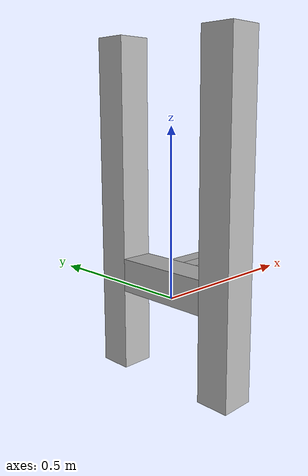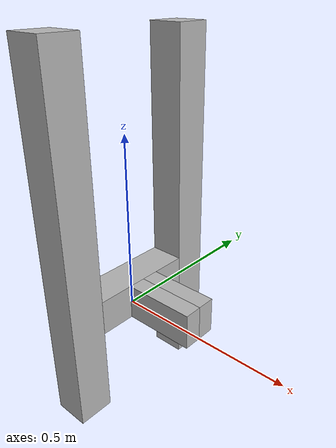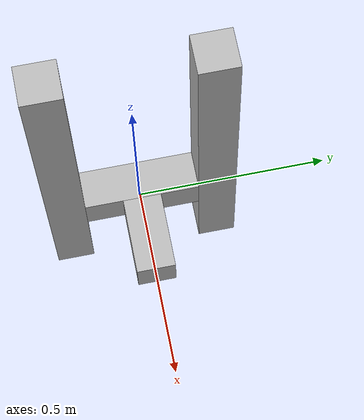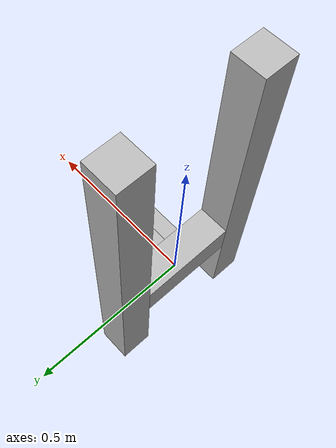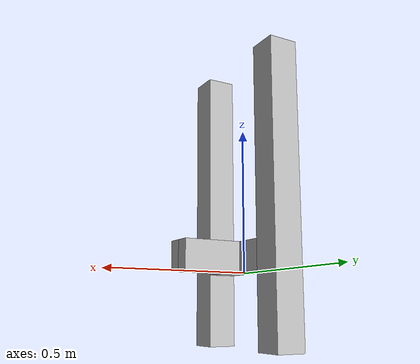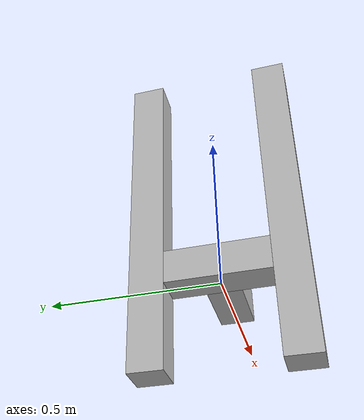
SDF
<?xml version="1.0"?>
<sdf version="1.4">
    <model name="simple_gripper">
        <link name="left_riser">
            <pose>0 -0.2 0.25 0 0 0</pose>
            <inertial>
                <pose>0 0 -0.25 0 0 0</pose>
                <inertia>
                    <ixx>0.01</ixx>
                    <ixy>0</ixy>
                    <ixz>0</ixz>
                    <iyy>0.01</iyy>
                    <iyz>0</iyz>
                    <izz>0.01</izz>
                </inertia>
                <mass>0.5</mass>
            </inertial>
            <collision name="collision">
                <geometry>
                    <box>
                        <size>0.1 0.1 1.0</size>
                    </box>
                </geometry>
            </collision>
            <visual name="visual">
                <geometry>
                    <box>
                        <size>0.1 0.1 1.0</size>
                    </box>
                </geometry>
                <material>
                    <script>Gazebo/Purple</script>
                </material>
            </visual>
        </link>
        <link name="right_riser">
            <pose>0 0.2 0.25 0 0 0</pose>
            <inertial>
                <pose>0 0 -0.25 0 0 0</pose>
                <inertia>
                    <ixx>0.01</ixx>
                    <ixy>0</ixy>
                    <ixz>0</ixz>
                    <iyy>0.01</iyy>
                    <iyz>0</iyz>
                    <izz>0.01</izz>
                </inertia>
                <mass>0.5</mass>
            </inertial>
            <collision name="collision">
                <geometry>
                    <box>
                        <size>0.1 0.1 1.0</size>
                    </box>
                </geometry>
            </collision>
            <visual name="visual">
                <geometry>
                    <box>
                        <size>0.1 0.1 1.0</size>
                    </box>
                </geometry>
                <material>
                    <script>Gazebo/Purple</script>
                </material>
            </visual>
        </link>
        <link name="palm">
            <pose>0.0 0.0 0.05 0 0 0</pose>
            <inertial>
                <inertia>
                    <ixx>0.01</ixx>
                    <ixy>0</ixy>
                    <ixz>0</ixz>
                    <iyy>0.01</iyy>
                    <iyz>0</iyz>
                    <izz>0.01</izz>
                </inertia>
                <mass>0.04</mass>
            </inertial>
            <collision name="collision">
                <geometry>
                    <box>
                        <size>0.1 0.3 0.1</size>
                    </box>
                </geometry>
            </collision>
            <visual name="visual">
                <geometry>
                    <box>
                        <size>0.1 0.3 0.1</size>
                    </box>
                </geometry>
                <material>
                    <script>Gazebo/Red</script>
                </material>
            </visual>
        </link>
        <link name="left_finger">
            <pose>0.15 -0.025 0.05 0 0 0</pose>
            <inertial>
                <inertia>
                    <ixx>0.01</ixx>
                    <ixy>0</ixy>
                    <ixz>0</ixz>
                    <iyy>0.01</iyy>
                    <iyz>0</iyz>
                    <izz>0.01</izz>
                </inertia>
                <mass>0.005</mass>
            </inertial>
            <collision name="collision">
                <geometry>
                    <box>
                        <size>0.2 0.05 0.1</size>
                    </box>
                </geometry>
            </collision>
            <visual name="visual">
                <geometry>
                    <box>
                        <size>0.2 0.05 0.1</size>
                    </box>
                </geometry>
                <material>
                    <script>Gazebo/Blue</script>
                </material>
            </visual>
        </link>
        <link name="right_finger">
            <pose>0.15 0.025 0.05 0 0 0</pose>
            <inertial>
                <inertia>
                    <ixx>0.01</ixx>
                    <ixy>0</ixy>
                    <ixz>0</ixz>
                    <iyy>0.01</iyy>
                    <iyz>0</iyz>
                    <izz>0.01</izz>
                </inertia>
                <mass>0.005</mass>
            </inertial>
            <collision name="collision">
                <geometry>
                    <box>
                        <size>0.2 0.05 0.1</size>
                    </box>
                </geometry>
            </collision>
            <visual name="visual">
                <geometry>
                    <box>
                        <size>0.2 0.05 0.1</size>
                    </box>
                </geometry>
                <material>
                    <script>Gazebo/Blue</script>
                </material>
            </visual>
        </link>
        <joint name="palm_right_riser" type="prismatic">
            <child>palm</child>
            <parent>right_riser</parent>
            <axis>
                <limit>
                    <lower>-0.25</lower>
                    <upper>0.65</upper>
                </limit>
                <xyz>0 0 1</xyz>
            </axis>
        </joint>
        <joint name="palm_left_riser" type="prismatic">
            <child>palm</child>
            <parent>left_riser</parent>
            <axis>
                <limit>
                    <lower>-0.25</lower>
                    <upper>0.65</upper>
                </limit>
                <xyz>0 0 1</xyz>
            </axis>
        </joint>
        <joint name="left_finger_palm" type="prismatic">
            <child>left_finger</child>
            <parent>palm</parent>
            <axis>
                <limit>
                    <lower>0</lower>
                    <upper>0.1</upper>
                </limit>
                <xyz>0 -1 0</xyz>
            </axis>
        </joint>
        <joint name="right_finger_palm" type="prismatic">
            <child>right_finger</child>
            <parent>palm</parent>
            <axis>
                <limit>
                    <lower>0</lower>
                    <upper>0.1</upper>
                </limit>
                <xyz>0 1 0</xyz>
            </axis>
        </joint>
    </model>
</sdf>
